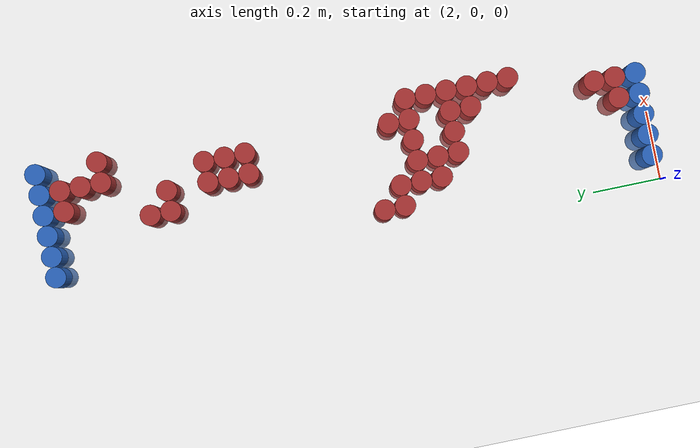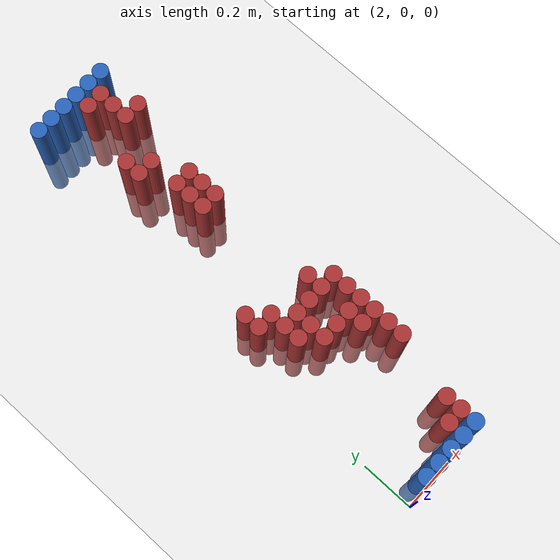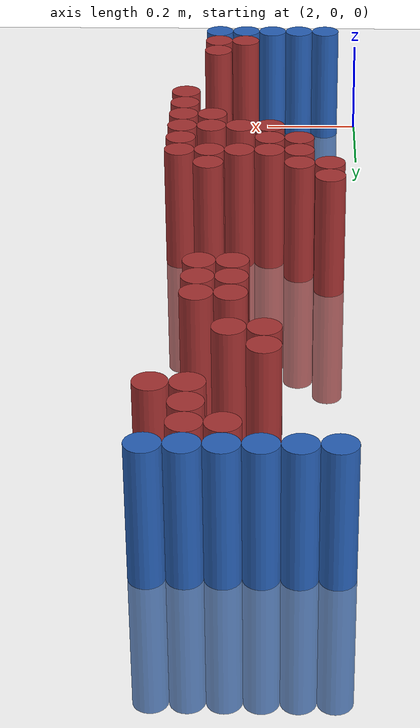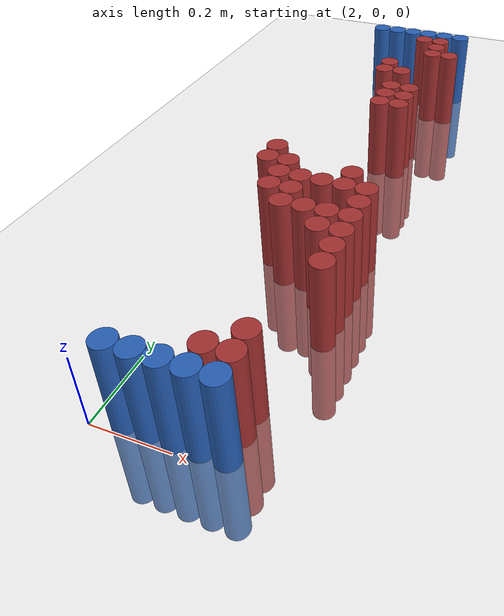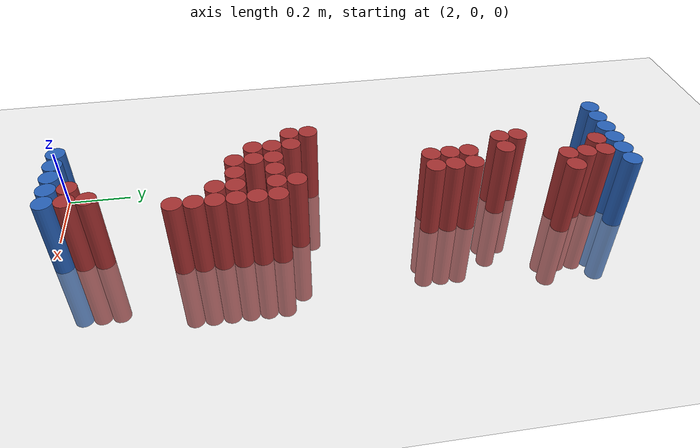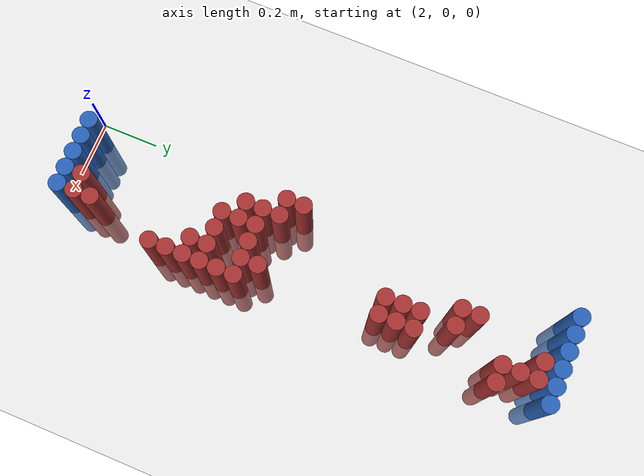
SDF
<sdf version="1.6">
 <world name="default">
  <model name="ground_plane">
   <static>1</static>
   <link name="link">
    <collision name="collision">
     <geometry><plane><normal>0 0 1</normal><size>100 100</size></plane></geometry>
     <surface><friction><ode><mu>100</mu><mu2>50</mu2></ode></friction></surface>
    </collision>
    <visual name="visual">
     <cast_shadows>0</cast_shadows>
     <geometry><plane><normal>0 0 1</normal><size>100 100</size></plane></geometry>
     <material>
      <script><uri>file://media/materials/scripts/gazebo.material</uri><name>Gazebo/Grey</name></script>
     </material>
    </visual>
   </link>
  </model>
  <model name="unit_cylinder_95">
   <static>1</static>
   <pose>2.070000 1.770000 0.000000 0.000000 0.000000 0.000000</pose>
   <link name="link">
    <inertial>
     <mass>1</mass>
     <inertia><ixx>0.145833</ixx><ixy>0</ixy><ixz>0</ixz><iyy>0.145833</iyy><iyz>0</iyz><izz>0.125</izz></inertia>
    </inertial>
    <collision name="collision">
     <geometry><cylinder><radius>0.030000</radius><length>0.5</length></cylinder></geometry>
    </collision>
    <visual name="visual">
     <geometry><cylinder><radius>0.030000</radius><length>0.5</length></cylinder></geometry>
     <material>
      <ambient>0.152000 0.379000 0.720000 1</ambient>
      <diffuse>0.152000 0.379000 0.720000 1</diffuse>
     </material>
     <material>
      <script><name>Gazebo/Grey</name><uri>file://media/materials/scripts/gazebo.material</uri></script>
     </material>
    </visual>
   </link>
  </model>
  <model name="unit_cylinder_96">
   <static>1</static>
   <pose>2.130000 1.770000 0.000000 0.000000 0.000000 0.000000</pose>
   <link name="link">
    <inertial>
     <mass>1</mass>
     <inertia><ixx>0.145833</ixx><ixy>0</ixy><ixz>0</ixz><iyy>0.145833</iyy><iyz>0</iyz><izz>0.125</izz></inertia>
    </inertial>
    <collision name="collision">
     <geometry><cylinder><radius>0.030000</radius><length>0.5</length></cylinder></geometry>
    </collision>
    <visual name="visual">
     <geometry><cylinder><radius>0.030000</radius><length>0.5</length></cylinder></geometry>
     <material>
      <ambient>0.152000 0.379000 0.720000 1</ambient>
      <diffuse>0.152000 0.379000 0.720000 1</diffuse>
     </material>
     <material>
      <script><name>Gazebo/Grey</name><uri>file://media/materials/scripts/gazebo.material</uri></script>
     </material>
    </visual>
   </link>
  </model>
  <model name="unit_cylinder_97">
   <static>1</static>
   <pose>2.190000 1.770000 0.000000 0.000000 0.000000 0.000000</pose>
   <link name="link">
    <inertial>
     <mass>1</mass>
     <inertia><ixx>0.145833</ixx><ixy>0</ixy><ixz>0</ixz><iyy>0.145833</iyy><iyz>0</iyz><izz>0.125</izz></inertia>
    </inertial>
    <collision name="collision">
     <geometry><cylinder><radius>0.030000</radius><length>0.5</length></cylinder></geometry>
    </collision>
    <visual name="visual">
     <geometry><cylinder><radius>0.030000</radius><length>0.5</length></cylinder></geometry>
     <material>
      <ambient>0.152000 0.379000 0.720000 1</ambient>
      <diffuse>0.152000 0.379000 0.720000 1</diffuse>
     </material>
     <material>
      <script><name>Gazebo/Grey</name><uri>file://media/materials/scripts/gazebo.material</uri></script>
     </material>
    </visual>
   </link>
  </model>
  <model name="unit_cylinder_98">
   <static>1</static>
   <pose>2.250000 1.770000 0.000000 0.000000 0.000000 0.000000</pose>
   <link name="link">
    <inertial>
     <mass>1</mass>
     <inertia><ixx>0.145833</ixx><ixy>0</ixy><ixz>0</ixz><iyy>0.145833</iyy><iyz>0</iyz><izz>0.125</izz></inertia>
    </inertial>
    <collision name="collision">
     <geometry><cylinder><radius>0.030000</radius><length>0.5</length></cylinder></geometry>
    </collision>
    <visual name="visual">
     <geometry><cylinder><radius>0.030000</radius><length>0.5</length></cylinder></geometry>
     <material>
      <ambient>0.152000 0.379000 0.720000 1</ambient>
      <diffuse>0.152000 0.379000 0.720000 1</diffuse>
     </material>
     <material>
      <script><name>Gazebo/Grey</name><uri>file://media/materials/scripts/gazebo.material</uri></script>
     </material>
    </visual>
   </link>
  </model>
  <model name="unit_cylinder_99">
   <static>1</static>
   <pose>2.310000 1.770000 0.000000 0.000000 0.000000 0.000000</pose>
   <link name="link">
    <inertial>
     <mass>1</mass>
     <inertia><ixx>0.145833</ixx><ixy>0</ixy><ixz>0</ixz><iyy>0.145833</iyy><iyz>0</iyz><izz>0.125</izz></inertia>
    </inertial>
    <collision name="collision">
     <geometry><cylinder><radius>0.030000</radius><length>0.5</length></cylinder></geometry>
    </collision>
    <visual name="visual">
     <geometry><cylinder><radius>0.030000</radius><length>0.5</length></cylinder></geometry>
     <material>
      <ambient>0.152000 0.379000 0.720000 1</ambient>
      <diffuse>0.152000 0.379000 0.720000 1</diffuse>
     </material>
     <material>
      <script><name>Gazebo/Grey</name><uri>file://media/materials/scripts/gazebo.material</uri></script>
     </material>
    </visual>
   </link>
  </model>
  <model name="unit_cylinder_100">
   <static>1</static>
   <pose>2.370000 1.770000 0.000000 0.000000 0.000000 0.000000</pose>
   <link name="link">
    <inertial>
     <mass>1</mass>
     <inertia><ixx>0.145833</ixx><ixy>0</ixy><ixz>0</ixz><iyy>0.145833</iyy><iyz>0</iyz><izz>0.125</izz></inertia>
    </inertial>
    <collision name="collision">
     <geometry><cylinder><radius>0.030000</radius><length>0.5</length></cylinder></geometry>
    </collision>
    <visual name="visual">
     <geometry><cylinder><radius>0.030000</radius><length>0.5</length></cylinder></geometry>
     <material>
      <ambient>0.152000 0.379000 0.720000 1</ambient>
      <diffuse>0.152000 0.379000 0.720000 1</diffuse>
     </material>
     <material>
      <script><name>Gazebo/Grey</name><uri>file://media/materials/scripts/gazebo.material</uri></script>
     </material>
    </visual>
   </link>
  </model>
  <model name="unit_cylinder_125">
   <static>1</static>
   <pose>2.250000 1.710000 0.000000 0.000000 0.000000 0.000000</pose>
   <link name="link">
    <inertial>
     <mass>1</mass>
     <inertia><ixx>0.145833</ixx><ixy>0</ixy><ixz>0</ixz><iyy>0.145833</iyy><iyz>0</iyz><izz>0.125</izz></inertia>
    </inertial>
    <collision name="collision">
     <geometry><cylinder><radius>0.030000</radius><length>0.5</length></cylinder></geometry>
    </collision>
    <visual name="visual">
     <geometry><cylinder><radius>0.030000</radius><length>0.5</length></cylinder></geometry>
     <material>
      <ambient>0.648000 0.192000 0.192000 1</ambient>
      <diffuse>0.648000 0.192000 0.192000 1</diffuse>
     </material>
     <material>
      <script><name>Gazebo/Grey</name><uri>file://media/materials/scripts/gazebo.material</uri></script>
     </material>
    </visual>
   </link>
  </model>
  <model name="unit_cylinder_126">
   <static>1</static>
   <pose>2.310000 1.710000 0.000000 0.000000 0.000000 0.000000</pose>
   <link name="link">
    <inertial>
     <mass>1</mass>
     <inertia><ixx>0.145833</ixx><ixy>0</ixy><ixz>0</ixz><iyy>0.145833</iyy><iyz>0</iyz><izz>0.125</izz></inertia>
    </inertial>
    <collision name="collision">
     <geometry><cylinder><radius>0.030000</radius><length>0.5</length></cylinder></geometry>
    </collision>
    <visual name="visual">
     <geometry><cylinder><radius>0.030000</radius><length>0.5</length></cylinder></geometry>
     <material>
      <ambient>0.648000 0.192000 0.192000 1</ambient>
      <diffuse>0.648000 0.192000 0.192000 1</diffuse>
     </material>
     <material>
      <script><name>Gazebo/Grey</name><uri>file://media/materials/scripts/gazebo.material</uri></script>
     </material>
    </visual>
   </link>
  </model>
  <model name="unit_cylinder_139">
   <static>1</static>
   <pose>2.310000 1.650000 0.000000 0.000000 0.000000 0.000000</pose>
   <link name="link">
    <inertial>
     <mass>1</mass>
     <inertia><ixx>0.145833</ixx><ixy>0</ixy><ixz>0</ixz><iyy>0.145833</iyy><iyz>0</iyz><izz>0.125</izz></inertia>
    </inertial>
    <collision name="collision">
     <geometry><cylinder><radius>0.030000</radius><length>0.5</length></cylinder></geometry>
    </collision>
    <visual name="visual">
     <geometry><cylinder><radius>0.030000</radius><length>0.5</length></cylinder></geometry>
     <material>
      <ambient>0.648000 0.192000 0.192000 1</ambient>
      <diffuse>0.648000 0.192000 0.192000 1</diffuse>
     </material>
     <material>
      <script><name>Gazebo/Grey</name><uri>file://media/materials/scripts/gazebo.material</uri></script>
     </material>
    </visual>
   </link>
  </model>
  <model name="unit_cylinder_143">
   <static>1</static>
   <pose>2.310000 1.590000 0.000000 0.000000 0.000000 0.000000</pose>
   <link name="link">
    <inertial>
     <mass>1</mass>
     <inertia><ixx>0.145833</ixx><ixy>0</ixy><ixz>0</ixz><iyy>0.145833</iyy><iyz>0</iyz><izz>0.125</izz></inertia>
    </inertial>
    <collision name="collision">
     <geometry><cylinder><radius>0.030000</radius><length>0.5</length></cylinder></geometry>
    </collision>
    <visual name="visual">
     <geometry><cylinder><radius>0.030000</radius><length>0.5</length></cylinder></geometry>
     <material>
      <ambient>0.648000 0.192000 0.192000 1</ambient>
      <diffuse>0.648000 0.192000 0.192000 1</diffuse>
     </material>
     <material>
      <script><name>Gazebo/Grey</name><uri>file://media/materials/scripts/gazebo.material</uri></script>
     </material>
    </visual>
   </link>
  </model>
  <model name="unit_cylinder_144">
   <static>1</static>
   <pose>2.370000 1.590000 0.000000 0.000000 0.000000 0.000000</pose>
   <link name="link">
    <inertial>
     <mass>1</mass>
     <inertia><ixx>0.145833</ixx><ixy>0</ixy><ixz>0</ixz><iyy>0.145833</iyy><iyz>0</iyz><izz>0.125</izz></inertia>
    </inertial>
    <collision name="collision">
     <geometry><cylinder><radius>0.030000</radius><length>0.5</length></cylinder></geometry>
    </collision>
    <visual name="visual">
     <geometry><cylinder><radius>0.030000</radius><length>0.5</length></cylinder></geometry>
     <material>
      <ambient>0.648000 0.192000 0.192000 1</ambient>
      <diffuse>0.648000 0.192000 0.192000 1</diffuse>
     </material>
     <material>
      <script><name>Gazebo/Grey</name><uri>file://media/materials/scripts/gazebo.material</uri></script>
     </material>
    </visual>
   </link>
  </model>
  <model name="unit_cylinder_165">
   <static>1</static>
   <pose>2.190000 1.470000 0.000000 0.000000 0.000000 0.000000</pose>
   <link name="link">
    <inertial>
     <mass>1</mass>
     <inertia><ixx>0.145833</ixx><ixy>0</ixy><ixz>0</ixz><iyy>0.145833</iyy><iyz>0</iyz><izz>0.125</izz></inertia>
    </inertial>
    <collision name="collision">
     <geometry><cylinder><radius>0.030000</radius><length>0.5</length></cylinder></geometry>
    </collision>
    <visual name="visual">
     <geometry><cylinder><radius>0.030000</radius><length>0.5</length></cylinder></geometry>
     <material>
      <ambient>0.648000 0.192000 0.192000 1</ambient>
      <diffuse>0.648000 0.192000 0.192000 1</diffuse>
     </material>
     <material>
      <script><name>Gazebo/Grey</name><uri>file://media/materials/scripts/gazebo.material</uri></script>
     </material>
    </visual>
   </link>
  </model>
  <model name="unit_cylinder_174">
   <static>1</static>
   <pose>2.190000 1.410000 0.000000 0.000000 0.000000 0.000000</pose>
   <link name="link">
    <inertial>
     <mass>1</mass>
     <inertia><ixx>0.145833</ixx><ixy>0</ixy><ixz>0</ixz><iyy>0.145833</iyy><iyz>0</iyz><izz>0.125</izz></inertia>
    </inertial>
    <collision name="collision">
     <geometry><cylinder><radius>0.030000</radius><length>0.5</length></cylinder></geometry>
    </collision>
    <visual name="visual">
     <geometry><cylinder><radius>0.030000</radius><length>0.5</length></cylinder></geometry>
     <material>
      <ambient>0.648000 0.192000 0.192000 1</ambient>
      <diffuse>0.648000 0.192000 0.192000 1</diffuse>
     </material>
     <material>
      <script><name>Gazebo/Grey</name><uri>file://media/materials/scripts/gazebo.material</uri></script>
     </material>
    </visual>
   </link>
  </model>
  <model name="unit_cylinder_175">
   <static>1</static>
   <pose>2.250000 1.410000 0.000000 0.000000 0.000000 0.000000</pose>
   <link name="link">
    <inertial>
     <mass>1</mass>
     <inertia><ixx>0.145833</ixx><ixy>0</ixy><ixz>0</ixz><iyy>0.145833</iyy><iyz>0</iyz><izz>0.125</izz></inertia>
    </inertial>
    <collision name="collision">
     <geometry><cylinder><radius>0.030000</radius><length>0.5</length></cylinder></geometry>
    </collision>
    <visual name="visual">
     <geometry><cylinder><radius>0.030000</radius><length>0.5</length></cylinder></geometry>
     <material>
      <ambient>0.648000 0.192000 0.192000 1</ambient>
      <diffuse>0.648000 0.192000 0.192000 1</diffuse>
     </material>
     <material>
      <script><name>Gazebo/Grey</name><uri>file://media/materials/scripts/gazebo.material</uri></script>
     </material>
    </visual>
   </link>
  </model>
  <model name="unit_cylinder_191">
   <static>1</static>
   <pose>2.250000 1.290000 0.000000 0.000000 0.000000 0.000000</pose>
   <link name="link">
    <inertial>
     <mass>1</mass>
     <inertia><ixx>0.145833</ixx><ixy>0</ixy><ixz>0</ixz><iyy>0.145833</iyy><iyz>0</iyz><izz>0.125</izz></inertia>
    </inertial>
    <collision name="collision">
     <geometry><cylinder><radius>0.030000</radius><length>0.5</length></cylinder></geometry>
    </collision>
    <visual name="visual">
     <geometry><cylinder><radius>0.030000</radius><length>0.5</length></cylinder></geometry>
     <material>
      <ambient>0.648000 0.192000 0.192000 1</ambient>
      <diffuse>0.648000 0.192000 0.192000 1</diffuse>
     </material>
     <material>
      <script><name>Gazebo/Grey</name><uri>file://media/materials/scripts/gazebo.material</uri></script>
     </material>
    </visual>
   </link>
  </model>
  <model name="unit_cylinder_192">
   <static>1</static>
   <pose>2.310000 1.290000 0.000000 0.000000 0.000000 0.000000</pose>
   <link name="link">
    <inertial>
     <mass>1</mass>
     <inertia><ixx>0.145833</ixx><ixy>0</ixy><ixz>0</ixz><iyy>0.145833</iyy><iyz>0</iyz><izz>0.125</izz></inertia>
    </inertial>
    <collision name="collision">
     <geometry><cylinder><radius>0.030000</radius><length>0.5</length></cylinder></geometry>
    </collision>
    <visual name="visual">
     <geometry><cylinder><radius>0.030000</radius><length>0.5</length></cylinder></geometry>
     <material>
      <ambient>0.648000 0.192000 0.192000 1</ambient>
      <diffuse>0.648000 0.192000 0.192000 1</diffuse>
     </material>
     <material>
      <script><name>Gazebo/Grey</name><uri>file://media/materials/scripts/gazebo.material</uri></script>
     </material>
    </visual>
   </link>
  </model>
  <model name="unit_cylinder_202">
   <static>1</static>
   <pose>2.250000 1.230000 0.000000 0.000000 0.000000 0.000000</pose>
   <link name="link">
    <inertial>
     <mass>1</mass>
     <inertia><ixx>0.145833</ixx><ixy>0</ixy><ixz>0</ixz><iyy>0.145833</iyy><iyz>0</iyz><izz>0.125</izz></inertia>
    </inertial>
    <collision name="collision">
     <geometry><cylinder><radius>0.030000</radius><length>0.5</length></cylinder></geometry>
    </collision>
    <visual name="visual">
     <geometry><cylinder><radius>0.030000</radius><length>0.5</length></cylinder></geometry>
     <material>
      <ambient>0.648000 0.192000 0.192000 1</ambient>
      <diffuse>0.648000 0.192000 0.192000 1</diffuse>
     </material>
     <material>
      <script><name>Gazebo/Grey</name><uri>file://media/materials/scripts/gazebo.material</uri></script>
     </material>
    </visual>
   </link>
  </model>
  <model name="unit_cylinder_203">
   <static>1</static>
   <pose>2.310000 1.230000 0.000000 0.000000 0.000000 0.000000</pose>
   <link name="link">
    <inertial>
     <mass>1</mass>
     <inertia><ixx>0.145833</ixx><ixy>0</ixy><ixz>0</ixz><iyy>0.145833</iyy><iyz>0</iyz><izz>0.125</izz></inertia>
    </inertial>
    <collision name="collision">
     <geometry><cylinder><radius>0.030000</radius><length>0.5</length></cylinder></geometry>
    </collision>
    <visual name="visual">
     <geometry><cylinder><radius>0.030000</radius><length>0.5</length></cylinder></geometry>
     <material>
      <ambient>0.648000 0.192000 0.192000 1</ambient>
      <diffuse>0.648000 0.192000 0.192000 1</diffuse>
     </material>
     <material>
      <script><name>Gazebo/Grey</name><uri>file://media/materials/scripts/gazebo.material</uri></script>
     </material>
    </visual>
   </link>
  </model>
  <model name="unit_cylinder_212">
   <static>1</static>
   <pose>2.250000 1.170000 0.000000 0.000000 0.000000 0.000000</pose>
   <link name="link">
    <inertial>
     <mass>1</mass>
     <inertia><ixx>0.145833</ixx><ixy>0</ixy><ixz>0</ixz><iyy>0.145833</iyy><iyz>0</iyz><izz>0.125</izz></inertia>
    </inertial>
    <collision name="collision">
     <geometry><cylinder><radius>0.030000</radius><length>0.5</length></cylinder></geometry>
    </collision>
    <visual name="visual">
     <geometry><cylinder><radius>0.030000</radius><length>0.5</length></cylinder></geometry>
     <material>
      <ambient>0.648000 0.192000 0.192000 1</ambient>
      <diffuse>0.648000 0.192000 0.192000 1</diffuse>
     </material>
     <material>
      <script><name>Gazebo/Grey</name><uri>file://media/materials/scripts/gazebo.material</uri></script>
     </material>
    </visual>
   </link>
  </model>
  <model name="unit_cylinder_213">
   <static>1</static>
   <pose>2.310000 1.170000 0.000000 0.000000 0.000000 0.000000</pose>
   <link name="link">
    <inertial>
     <mass>1</mass>
     <inertia><ixx>0.145833</ixx><ixy>0</ixy><ixz>0</ixz><iyy>0.145833</iyy><iyz>0</iyz><izz>0.125</izz></inertia>
    </inertial>
    <collision name="collision">
     <geometry><cylinder><radius>0.030000</radius><length>0.5</length></cylinder></geometry>
    </collision>
    <visual name="visual">
     <geometry><cylinder><radius>0.030000</radius><length>0.5</length></cylinder></geometry>
     <material>
      <ambient>0.648000 0.192000 0.192000 1</ambient>
      <diffuse>0.648000 0.192000 0.192000 1</diffuse>
     </material>
     <material>
      <script><name>Gazebo/Grey</name><uri>file://media/materials/scripts/gazebo.material</uri></script>
     </material>
    </visual>
   </link>
  </model>
  <model name="unit_cylinder_241">
   <static>1</static>
   <pose>2.070000 0.810000 0.000000 0.000000 0.000000 0.000000</pose>
   <link name="link">
    <inertial>
     <mass>1</mass>
     <inertia><ixx>0.145833</ixx><ixy>0</ixy><ixz>0</ixz><iyy>0.145833</iyy><iyz>0</iyz><izz>0.125</izz></inertia>
    </inertial>
    <collision name="collision">
     <geometry><cylinder><radius>0.030000</radius><length>0.5</length></cylinder></geometry>
    </collision>
    <visual name="visual">
     <geometry><cylinder><radius>0.030000</radius><length>0.5</length></cylinder></geometry>
     <material>
      <ambient>0.648000 0.192000 0.192000 1</ambient>
      <diffuse>0.648000 0.192000 0.192000 1</diffuse>
     </material>
     <material>
      <script><name>Gazebo/Grey</name><uri>file://media/materials/scripts/gazebo.material</uri></script>
     </material>
    </visual>
   </link>
  </model>
  <model name="unit_cylinder_242">
   <static>1</static>
   <pose>2.070000 0.750000 0.000000 0.000000 0.000000 0.000000</pose>
   <link name="link">
    <inertial>
     <mass>1</mass>
     <inertia><ixx>0.145833</ixx><ixy>0</ixy><ixz>0</ixz><iyy>0.145833</iyy><iyz>0</iyz><izz>0.125</izz></inertia>
    </inertial>
    <collision name="collision">
     <geometry><cylinder><radius>0.030000</radius><length>0.5</length></cylinder></geometry>
    </collision>
    <visual name="visual">
     <geometry><cylinder><radius>0.030000</radius><length>0.5</length></cylinder></geometry>
     <material>
      <ambient>0.648000 0.192000 0.192000 1</ambient>
      <diffuse>0.648000 0.192000 0.192000 1</diffuse>
     </material>
     <material>
      <script><name>Gazebo/Grey</name><uri>file://media/materials/scripts/gazebo.material</uri></script>
     </material>
    </visual>
   </link>
  </model>
  <model name="unit_cylinder_243">
   <static>1</static>
   <pose>2.130000 0.750000 0.000000 0.000000 0.000000 0.000000</pose>
   <link name="link">
    <inertial>
     <mass>1</mass>
     <inertia><ixx>0.145833</ixx><ixy>0</ixy><ixz>0</ixz><iyy>0.145833</iyy><iyz>0</iyz><izz>0.125</izz></inertia>
    </inertial>
    <collision name="collision">
     <geometry><cylinder><radius>0.030000</radius><length>0.5</length></cylinder></geometry>
    </collision>
    <visual name="visual">
     <geometry><cylinder><radius>0.030000</radius><length>0.5</length></cylinder></geometry>
     <material>
      <ambient>0.648000 0.192000 0.192000 1</ambient>
      <diffuse>0.648000 0.192000 0.192000 1</diffuse>
     </material>
     <material>
      <script><name>Gazebo/Grey</name><uri>file://media/materials/scripts/gazebo.material</uri></script>
     </material>
    </visual>
   </link>
  </model>
  <model name="unit_cylinder_244">
   <static>1</static>
   <pose>2.310000 0.750000 0.000000 0.000000 0.000000 0.000000</pose>
   <link name="link">
    <inertial>
     <mass>1</mass>
     <inertia><ixx>0.145833</ixx><ixy>0</ixy><ixz>0</ixz><iyy>0.145833</iyy><iyz>0</iyz><izz>0.125</izz></inertia>
    </inertial>
    <collision name="collision">
     <geometry><cylinder><radius>0.030000</radius><length>0.5</length></cylinder></geometry>
    </collision>
    <visual name="visual">
     <geometry><cylinder><radius>0.030000</radius><length>0.5</length></cylinder></geometry>
     <material>
      <ambient>0.648000 0.192000 0.192000 1</ambient>
      <diffuse>0.648000 0.192000 0.192000 1</diffuse>
     </material>
     <material>
      <script><name>Gazebo/Grey</name><uri>file://media/materials/scripts/gazebo.material</uri></script>
     </material>
    </visual>
   </link>
  </model>
  <model name="unit_cylinder_245">
   <static>1</static>
   <pose>2.130000 0.690000 0.000000 0.000000 0.000000 0.000000</pose>
   <link name="link">
    <inertial>
     <mass>1</mass>
     <inertia><ixx>0.145833</ixx><ixy>0</ixy><ixz>0</ixz><iyy>0.145833</iyy><iyz>0</iyz><izz>0.125</izz></inertia>
    </inertial>
    <collision name="collision">
     <geometry><cylinder><radius>0.030000</radius><length>0.5</length></cylinder></geometry>
    </collision>
    <visual name="visual">
     <geometry><cylinder><radius>0.030000</radius><length>0.5</length></cylinder></geometry>
     <material>
      <ambient>0.648000 0.192000 0.192000 1</ambient>
      <diffuse>0.648000 0.192000 0.192000 1</diffuse>
     </material>
     <material>
      <script><name>Gazebo/Grey</name><uri>file://media/materials/scripts/gazebo.material</uri></script>
     </material>
    </visual>
   </link>
  </model>
  <model name="unit_cylinder_246">
   <static>1</static>
   <pose>2.190000 0.690000 0.000000 0.000000 0.000000 0.000000</pose>
   <link name="link">
    <inertial>
     <mass>1</mass>
     <inertia><ixx>0.145833</ixx><ixy>0</ixy><ixz>0</ixz><iyy>0.145833</iyy><iyz>0</iyz><izz>0.125</izz></inertia>
    </inertial>
    <collision name="collision">
     <geometry><cylinder><radius>0.030000</radius><length>0.5</length></cylinder></geometry>
    </collision>
    <visual name="visual">
     <geometry><cylinder><radius>0.030000</radius><length>0.5</length></cylinder></geometry>
     <material>
      <ambient>0.648000 0.192000 0.192000 1</ambient>
      <diffuse>0.648000 0.192000 0.192000 1</diffuse>
     </material>
     <material>
      <script><name>Gazebo/Grey</name><uri>file://media/materials/scripts/gazebo.material</uri></script>
     </material>
    </visual>
   </link>
  </model>
  <model name="unit_cylinder_247">
   <static>1</static>
   <pose>2.250000 0.690000 0.000000 0.000000 0.000000 0.000000</pose>
   <link name="link">
    <inertial>
     <mass>1</mass>
     <inertia><ixx>0.145833</ixx><ixy>0</ixy><ixz>0</ixz><iyy>0.145833</iyy><iyz>0</iyz><izz>0.125</izz></inertia>
    </inertial>
    <collision name="collision">
     <geometry><cylinder><radius>0.030000</radius><length>0.5</length></cylinder></geometry>
    </collision>
    <visual name="visual">
     <geometry><cylinder><radius>0.030000</radius><length>0.5</length></cylinder></geometry>
     <material>
      <ambient>0.648000 0.192000 0.192000 1</ambient>
      <diffuse>0.648000 0.192000 0.192000 1</diffuse>
     </material>
     <material>
      <script><name>Gazebo/Grey</name><uri>file://media/materials/scripts/gazebo.material</uri></script>
     </material>
    </visual>
   </link>
  </model>
  <model name="unit_cylinder_248">
   <static>1</static>
   <pose>2.310000 0.690000 0.000000 0.000000 0.000000 0.000000</pose>
   <link name="link">
    <inertial>
     <mass>1</mass>
     <inertia><ixx>0.145833</ixx><ixy>0</ixy><ixz>0</ixz><iyy>0.145833</iyy><iyz>0</iyz><izz>0.125</izz></inertia>
    </inertial>
    <collision name="collision">
     <geometry><cylinder><radius>0.030000</radius><length>0.5</length></cylinder></geometry>
    </collision>
    <visual name="visual">
     <geometry><cylinder><radius>0.030000</radius><length>0.5</length></cylinder></geometry>
     <material>
      <ambient>0.648000 0.192000 0.192000 1</ambient>
      <diffuse>0.648000 0.192000 0.192000 1</diffuse>
     </material>
     <material>
      <script><name>Gazebo/Grey</name><uri>file://media/materials/scripts/gazebo.material</uri></script>
     </material>
    </visual>
   </link>
  </model>
  <model name="unit_cylinder_249">
   <static>1</static>
   <pose>2.370000 0.690000 0.000000 0.000000 0.000000 0.000000</pose>
   <link name="link">
    <inertial>
     <mass>1</mass>
     <inertia><ixx>0.145833</ixx><ixy>0</ixy><ixz>0</ixz><iyy>0.145833</iyy><iyz>0</iyz><izz>0.125</izz></inertia>
    </inertial>
    <collision name="collision">
     <geometry><cylinder><radius>0.030000</radius><length>0.5</length></cylinder></geometry>
    </collision>
    <visual name="visual">
     <geometry><cylinder><radius>0.030000</radius><length>0.5</length></cylinder></geometry>
     <material>
      <ambient>0.648000 0.192000 0.192000 1</ambient>
      <diffuse>0.648000 0.192000 0.192000 1</diffuse>
     </material>
     <material>
      <script><name>Gazebo/Grey</name><uri>file://media/materials/scripts/gazebo.material</uri></script>
     </material>
    </visual>
   </link>
  </model>
  <model name="unit_cylinder_250">
   <static>1</static>
   <pose>2.130000 0.630000 0.000000 0.000000 0.000000 0.000000</pose>
   <link name="link">
    <inertial>
     <mass>1</mass>
     <inertia><ixx>0.145833</ixx><ixy>0</ixy><ixz>0</ixz><iyy>0.145833</iyy><iyz>0</iyz><izz>0.125</izz></inertia>
    </inertial>
    <collision name="collision">
     <geometry><cylinder><radius>0.030000</radius><length>0.5</length></cylinder></geometry>
    </collision>
    <visual name="visual">
     <geometry><cylinder><radius>0.030000</radius><length>0.5</length></cylinder></geometry>
     <material>
      <ambient>0.648000 0.192000 0.192000 1</ambient>
      <diffuse>0.648000 0.192000 0.192000 1</diffuse>
     </material>
     <material>
      <script><name>Gazebo/Grey</name><uri>file://media/materials/scripts/gazebo.material</uri></script>
     </material>
    </visual>
   </link>
  </model>
  <model name="unit_cylinder_251">
   <static>1</static>
   <pose>2.190000 0.630000 0.000000 0.000000 0.000000 0.000000</pose>
   <link name="link">
    <inertial>
     <mass>1</mass>
     <inertia><ixx>0.145833</ixx><ixy>0</ixy><ixz>0</ixz><iyy>0.145833</iyy><iyz>0</iyz><izz>0.125</izz></inertia>
    </inertial>
    <collision name="collision">
     <geometry><cylinder><radius>0.030000</radius><length>0.5</length></cylinder></geometry>
    </collision>
    <visual name="visual">
     <geometry><cylinder><radius>0.030000</radius><length>0.5</length></cylinder></geometry>
     <material>
      <ambient>0.648000 0.192000 0.192000 1</ambient>
      <diffuse>0.648000 0.192000 0.192000 1</diffuse>
     </material>
     <material>
      <script><name>Gazebo/Grey</name><uri>file://media/materials/scripts/gazebo.material</uri></script>
     </material>
    </visual>
   </link>
  </model>
  <model name="unit_cylinder_252">
   <static>1</static>
   <pose>2.370000 0.630000 0.000000 0.000000 0.000000 0.000000</pose>
   <link name="link">
    <inertial>
     <mass>1</mass>
     <inertia><ixx>0.145833</ixx><ixy>0</ixy><ixz>0</ixz><iyy>0.145833</iyy><iyz>0</iyz><izz>0.125</izz></inertia>
    </inertial>
    <collision name="collision">
     <geometry><cylinder><radius>0.030000</radius><length>0.5</length></cylinder></geometry>
    </collision>
    <visual name="visual">
     <geometry><cylinder><radius>0.030000</radius><length>0.5</length></cylinder></geometry>
     <material>
      <ambient>0.648000 0.192000 0.192000 1</ambient>
      <diffuse>0.648000 0.192000 0.192000 1</diffuse>
     </material>
     <material>
      <script><name>Gazebo/Grey</name><uri>file://media/materials/scripts/gazebo.material</uri></script>
     </material>
    </visual>
   </link>
  </model>
  <model name="unit_cylinder_254">
   <static>1</static>
   <pose>2.190000 0.570000 0.000000 0.000000 0.000000 0.000000</pose>
   <link name="link">
    <inertial>
     <mass>1</mass>
     <inertia><ixx>0.145833</ixx><ixy>0</ixy><ixz>0</ixz><iyy>0.145833</iyy><iyz>0</iyz><izz>0.125</izz></inertia>
    </inertial>
    <collision name="collision">
     <geometry><cylinder><radius>0.030000</radius><length>0.5</length></cylinder></geometry>
    </collision>
    <visual name="visual">
     <geometry><cylinder><radius>0.030000</radius><length>0.5</length></cylinder></geometry>
     <material>
      <ambient>0.648000 0.192000 0.192000 1</ambient>
      <diffuse>0.648000 0.192000 0.192000 1</diffuse>
     </material>
     <material>
      <script><name>Gazebo/Grey</name><uri>file://media/materials/scripts/gazebo.material</uri></script>
     </material>
    </visual>
   </link>
  </model>
  <model name="unit_cylinder_255">
   <static>1</static>
   <pose>2.250000 0.570000 0.000000 0.000000 0.000000 0.000000</pose>
   <link name="link">
    <inertial>
     <mass>1</mass>
     <inertia><ixx>0.145833</ixx><ixy>0</ixy><ixz>0</ixz><iyy>0.145833</iyy><iyz>0</iyz><izz>0.125</izz></inertia>
    </inertial>
    <collision name="collision">
     <geometry><cylinder><radius>0.030000</radius><length>0.5</length></cylinder></geometry>
    </collision>
    <visual name="visual">
     <geometry><cylinder><radius>0.030000</radius><length>0.5</length></cylinder></geometry>
     <material>
      <ambient>0.648000 0.192000 0.192000 1</ambient>
      <diffuse>0.648000 0.192000 0.192000 1</diffuse>
     </material>
     <material>
      <script><name>Gazebo/Grey</name><uri>file://media/materials/scripts/gazebo.material</uri></script>
     </material>
    </visual>
   </link>
  </model>
  <model name="unit_cylinder_256">
   <static>1</static>
   <pose>2.310000 0.570000 0.000000 0.000000 0.000000 0.000000</pose>
   <link name="link">
    <inertial>
     <mass>1</mass>
     <inertia><ixx>0.145833</ixx><ixy>0</ixy><ixz>0</ixz><iyy>0.145833</iyy><iyz>0</iyz><izz>0.125</izz></inertia>
    </inertial>
    <collision name="collision">
     <geometry><cylinder><radius>0.030000</radius><length>0.5</length></cylinder></geometry>
    </collision>
    <visual name="visual">
     <geometry><cylinder><radius>0.030000</radius><length>0.5</length></cylinder></geometry>
     <material>
      <ambient>0.648000 0.192000 0.192000 1</ambient>
      <diffuse>0.648000 0.192000 0.192000 1</diffuse>
     </material>
     <material>
      <script><name>Gazebo/Grey</name><uri>file://media/materials/scripts/gazebo.material</uri></script>
     </material>
    </visual>
   </link>
  </model>
  <model name="unit_cylinder_257">
   <static>1</static>
   <pose>2.370000 0.570000 0.000000 0.000000 0.000000 0.000000</pose>
   <link name="link">
    <inertial>
     <mass>1</mass>
     <inertia><ixx>0.145833</ixx><ixy>0</ixy><ixz>0</ixz><iyy>0.145833</iyy><iyz>0</iyz><izz>0.125</izz></inertia>
    </inertial>
    <collision name="collision">
     <geometry><cylinder><radius>0.030000</radius><length>0.5</length></cylinder></geometry>
    </collision>
    <visual name="visual">
     <geometry><cylinder><radius>0.030000</radius><length>0.5</length></cylinder></geometry>
     <material>
      <ambient>0.648000 0.192000 0.192000 1</ambient>
      <diffuse>0.648000 0.192000 0.192000 1</diffuse>
     </material>
     <material>
      <script><name>Gazebo/Grey</name><uri>file://media/materials/scripts/gazebo.material</uri></script>
     </material>
    </visual>
   </link>
  </model>
  <model name="unit_cylinder_259">
   <static>1</static>
   <pose>2.310000 0.510000 0.000000 0.000000 0.000000 0.000000</pose>
   <link name="link">
    <inertial>
     <mass>1</mass>
     <inertia><ixx>0.145833</ixx><ixy>0</ixy><ixz>0</ixz><iyy>0.145833</iyy><iyz>0</iyz><izz>0.125</izz></inertia>
    </inertial>
    <collision name="collision">
     <geometry><cylinder><radius>0.030000</radius><length>0.5</length></cylinder></geometry>
    </collision>
    <visual name="visual">
     <geometry><cylinder><radius>0.030000</radius><length>0.5</length></cylinder></geometry>
     <material>
      <ambient>0.648000 0.192000 0.192000 1</ambient>
      <diffuse>0.648000 0.192000 0.192000 1</diffuse>
     </material>
     <material>
      <script><name>Gazebo/Grey</name><uri>file://media/materials/scripts/gazebo.material</uri></script>
     </material>
    </visual>
   </link>
  </model>
  <model name="unit_cylinder_260">
   <static>1</static>
   <pose>2.370000 0.510000 0.000000 0.000000 0.000000 0.000000</pose>
   <link name="link">
    <inertial>
     <mass>1</mass>
     <inertia><ixx>0.145833</ixx><ixy>0</ixy><ixz>0</ixz><iyy>0.145833</iyy><iyz>0</iyz><izz>0.125</izz></inertia>
    </inertial>
    <collision name="collision">
     <geometry><cylinder><radius>0.030000</radius><length>0.5</length></cylinder></geometry>
    </collision>
    <visual name="visual">
     <geometry><cylinder><radius>0.030000</radius><length>0.5</length></cylinder></geometry>
     <material>
      <ambient>0.648000 0.192000 0.192000 1</ambient>
      <diffuse>0.648000 0.192000 0.192000 1</diffuse>
     </material>
     <material>
      <script><name>Gazebo/Grey</name><uri>file://media/materials/scripts/gazebo.material</uri></script>
     </material>
    </visual>
   </link>
  </model>
  <model name="unit_cylinder_261">
   <static>1</static>
   <pose>2.370000 0.450000 0.000000 0.000000 0.000000 0.000000</pose>
   <link name="link">
    <inertial>
     <mass>1</mass>
     <inertia><ixx>0.145833</ixx><ixy>0</ixy><ixz>0</ixz><iyy>0.145833</iyy><iyz>0</iyz><izz>0.125</izz></inertia>
    </inertial>
    <collision name="collision">
     <geometry><cylinder><radius>0.030000</radius><length>0.5</length></cylinder></geometry>
    </collision>
    <visual name="visual">
     <geometry><cylinder><radius>0.030000</radius><length>0.5</length></cylinder></geometry>
     <material>
      <ambient>0.648000 0.192000 0.192000 1</ambient>
      <diffuse>0.648000 0.192000 0.192000 1</diffuse>
     </material>
     <material>
      <script><name>Gazebo/Grey</name><uri>file://media/materials/scripts/gazebo.material</uri></script>
     </material>
    </visual>
   </link>
  </model>
  <model name="unit_cylinder_264">
   <static>1</static>
   <pose>2.370000 0.390000 0.000000 0.000000 0.000000 0.000000</pose>
   <link name="link">
    <inertial>
     <mass>1</mass>
     <inertia><ixx>0.145833</ixx><ixy>0</ixy><ixz>0</ixz><iyy>0.145833</iyy><iyz>0</iyz><izz>0.125</izz></inertia>
    </inertial>
    <collision name="collision">
     <geometry><cylinder><radius>0.030000</radius><length>0.5</length></cylinder></geometry>
    </collision>
    <visual name="visual">
     <geometry><cylinder><radius>0.030000</radius><length>0.5</length></cylinder></geometry>
     <material>
      <ambient>0.648000 0.192000 0.192000 1</ambient>
      <diffuse>0.648000 0.192000 0.192000 1</diffuse>
     </material>
     <material>
      <script><name>Gazebo/Grey</name><uri>file://media/materials/scripts/gazebo.material</uri></script>
     </material>
    </visual>
   </link>
  </model>
  <model name="unit_cylinder_277">
   <static>1</static>
   <pose>2.310000 0.150000 0.000000 0.000000 0.000000 0.000000</pose>
   <link name="link">
    <inertial>
     <mass>1</mass>
     <inertia><ixx>0.145833</ixx><ixy>0</ixy><ixz>0</ixz><iyy>0.145833</iyy><iyz>0</iyz><izz>0.125</izz></inertia>
    </inertial>
    <collision name="collision">
     <geometry><cylinder><radius>0.030000</radius><length>0.5</length></cylinder></geometry>
    </collision>
    <visual name="visual">
     <geometry><cylinder><radius>0.030000</radius><length>0.5</length></cylinder></geometry>
     <material>
      <ambient>0.648000 0.192000 0.192000 1</ambient>
      <diffuse>0.648000 0.192000 0.192000 1</diffuse>
     </material>
     <material>
      <script><name>Gazebo/Grey</name><uri>file://media/materials/scripts/gazebo.material</uri></script>
     </material>
    </visual>
   </link>
  </model>
  <model name="unit_cylinder_289">
   <static>1</static>
   <pose>2.250000 0.090000 0.000000 0.000000 0.000000 0.000000</pose>
   <link name="link">
    <inertial>
     <mass>1</mass>
     <inertia><ixx>0.145833</ixx><ixy>0</ixy><ixz>0</ixz><iyy>0.145833</iyy><iyz>0</iyz><izz>0.125</izz></inertia>
    </inertial>
    <collision name="collision">
     <geometry><cylinder><radius>0.030000</radius><length>0.5</length></cylinder></geometry>
    </collision>
    <visual name="visual">
     <geometry><cylinder><radius>0.030000</radius><length>0.5</length></cylinder></geometry>
     <material>
      <ambient>0.648000 0.192000 0.192000 1</ambient>
      <diffuse>0.648000 0.192000 0.192000 1</diffuse>
     </material>
     <material>
      <script><name>Gazebo/Grey</name><uri>file://media/materials/scripts/gazebo.material</uri></script>
     </material>
    </visual>
   </link>
  </model>
  <model name="unit_cylinder_290">
   <static>1</static>
   <pose>2.310000 0.090000 0.000000 0.000000 0.000000 0.000000</pose>
   <link name="link">
    <inertial>
     <mass>1</mass>
     <inertia><ixx>0.145833</ixx><ixy>0</ixy><ixz>0</ixz><iyy>0.145833</iyy><iyz>0</iyz><izz>0.125</izz></inertia>
    </inertial>
    <collision name="collision">
     <geometry><cylinder><radius>0.030000</radius><length>0.5</length></cylinder></geometry>
    </collision>
    <visual name="visual">
     <geometry><cylinder><radius>0.030000</radius><length>0.5</length></cylinder></geometry>
     <material>
      <ambient>0.648000 0.192000 0.192000 1</ambient>
      <diffuse>0.648000 0.192000 0.192000 1</diffuse>
     </material>
     <material>
      <script><name>Gazebo/Grey</name><uri>file://media/materials/scripts/gazebo.material</uri></script>
     </material>
    </visual>
   </link>
  </model>
  <model name="unit_cylinder_303">
   <static>1</static>
   <pose>2.070000 0.030000 0.000000 0.000000 0.000000 0.000000</pose>
   <link name="link">
    <inertial>
     <mass>1</mass>
     <inertia><ixx>0.145833</ixx><ixy>0</ixy><ixz>0</ixz><iyy>0.145833</iyy><iyz>0</iyz><izz>0.125</izz></inertia>
    </inertial>
    <collision name="collision">
     <geometry><cylinder><radius>0.030000</radius><length>0.5</length></cylinder></geometry>
    </collision>
    <visual name="visual">
     <geometry><cylinder><radius>0.030000</radius><length>0.5</length></cylinder></geometry>
     <material>
      <ambient>0.152000 0.379000 0.720000 1</ambient>
      <diffuse>0.152000 0.379000 0.720000 1</diffuse>
     </material>
     <material>
      <script><name>Gazebo/Grey</name><uri>file://media/materials/scripts/gazebo.material</uri></script>
     </material>
    </visual>
   </link>
  </model>
  <model name="unit_cylinder_304">
   <static>1</static>
   <pose>2.130000 0.030000 0.000000 0.000000 0.000000 0.000000</pose>
   <link name="link">
    <inertial>
     <mass>1</mass>
     <inertia><ixx>0.145833</ixx><ixy>0</ixy><ixz>0</ixz><iyy>0.145833</iyy><iyz>0</iyz><izz>0.125</izz></inertia>
    </inertial>
    <collision name="collision">
     <geometry><cylinder><radius>0.030000</radius><length>0.5</length></cylinder></geometry>
    </collision>
    <visual name="visual">
     <geometry><cylinder><radius>0.030000</radius><length>0.5</length></cylinder></geometry>
     <material>
      <ambient>0.152000 0.379000 0.720000 1</ambient>
      <diffuse>0.152000 0.379000 0.720000 1</diffuse>
     </material>
     <material>
      <script><name>Gazebo/Grey</name><uri>file://media/materials/scripts/gazebo.material</uri></script>
     </material>
    </visual>
   </link>
  </model>
  <model name="unit_cylinder_305">
   <static>1</static>
   <pose>2.190000 0.030000 0.000000 0.000000 0.000000 0.000000</pose>
   <link name="link">
    <inertial>
     <mass>1</mass>
     <inertia><ixx>0.145833</ixx><ixy>0</ixy><ixz>0</ixz><iyy>0.145833</iyy><iyz>0</iyz><izz>0.125</izz></inertia>
    </inertial>
    <collision name="collision">
     <geometry><cylinder><radius>0.030000</radius><length>0.5</length></cylinder></geometry>
    </collision>
    <visual name="visual">
     <geometry><cylinder><radius>0.030000</radius><length>0.5</length></cylinder></geometry>
     <material>
      <ambient>0.152000 0.379000 0.720000 1</ambient>
      <diffuse>0.152000 0.379000 0.720000 1</diffuse>
     </material>
     <material>
      <script><name>Gazebo/Grey</name><uri>file://media/materials/scripts/gazebo.material</uri></script>
     </material>
    </visual>
   </link>
  </model>
  <model name="unit_cylinder_306">
   <static>1</static>
   <pose>2.250000 0.030000 0.000000 0.000000 0.000000 0.000000</pose>
   <link name="link">
    <inertial>
     <mass>1</mass>
     <inertia><ixx>0.145833</ixx><ixy>0</ixy><ixz>0</ixz><iyy>0.145833</iyy><iyz>0</iyz><izz>0.125</izz></inertia>
    </inertial>
    <collision name="collision">
     <geometry><cylinder><radius>0.030000</radius><length>0.5</length></cylinder></geometry>
    </collision>
    <visual name="visual">
     <geometry><cylinder><radius>0.030000</radius><length>0.5</length></cylinder></geometry>
     <material>
      <ambient>0.152000 0.379000 0.720000 1</ambient>
      <diffuse>0.152000 0.379000 0.720000 1</diffuse>
     </material>
     <material>
      <script><name>Gazebo/Grey</name><uri>file://media/materials/scripts/gazebo.material</uri></script>
     </material>
    </visual>
   </link>
  </model>
  <model name="unit_cylinder_307">
   <static>1</static>
   <pose>2.310000 0.030000 0.000000 0.000000 0.000000 0.000000</pose>
   <link name="link">
    <inertial>
     <mass>1</mass>
     <inertia><ixx>0.145833</ixx><ixy>0</ixy><ixz>0</ixz><iyy>0.145833</iyy><iyz>0</iyz><izz>0.125</izz></inertia>
    </inertial>
    <collision name="collision">
     <geometry><cylinder><radius>0.030000</radius><length>0.5</length></cylinder></geometry>
    </collision>
    <visual name="visual">
     <geometry><cylinder><radius>0.030000</radius><length>0.5</length></cylinder></geometry>
     <material>
      <ambient>0.152000 0.379000 0.720000 1</ambient>
      <diffuse>0.152000 0.379000 0.720000 1</diffuse>
     </material>
     <material>
      <script><name>Gazebo/Grey</name><uri>file://media/materials/scripts/gazebo.material</uri></script>
     </material>
    </visual>
   </link>
  </model>
 </world>
</sdf>
